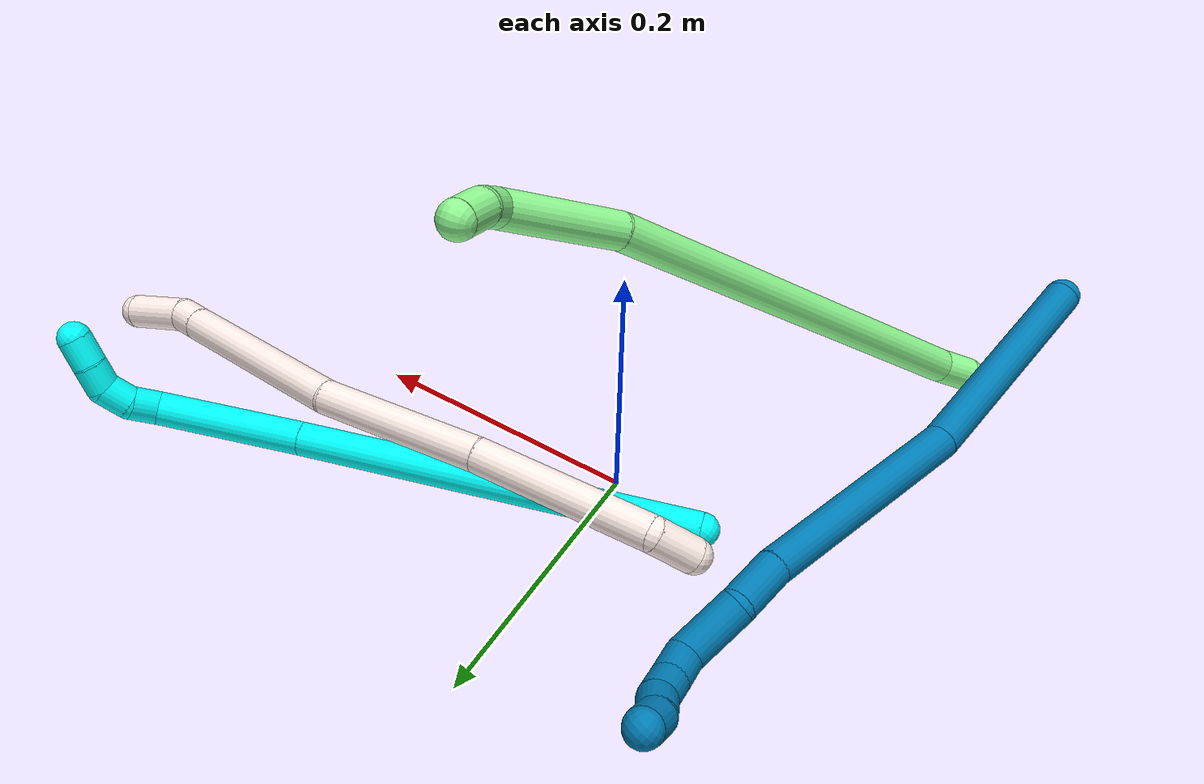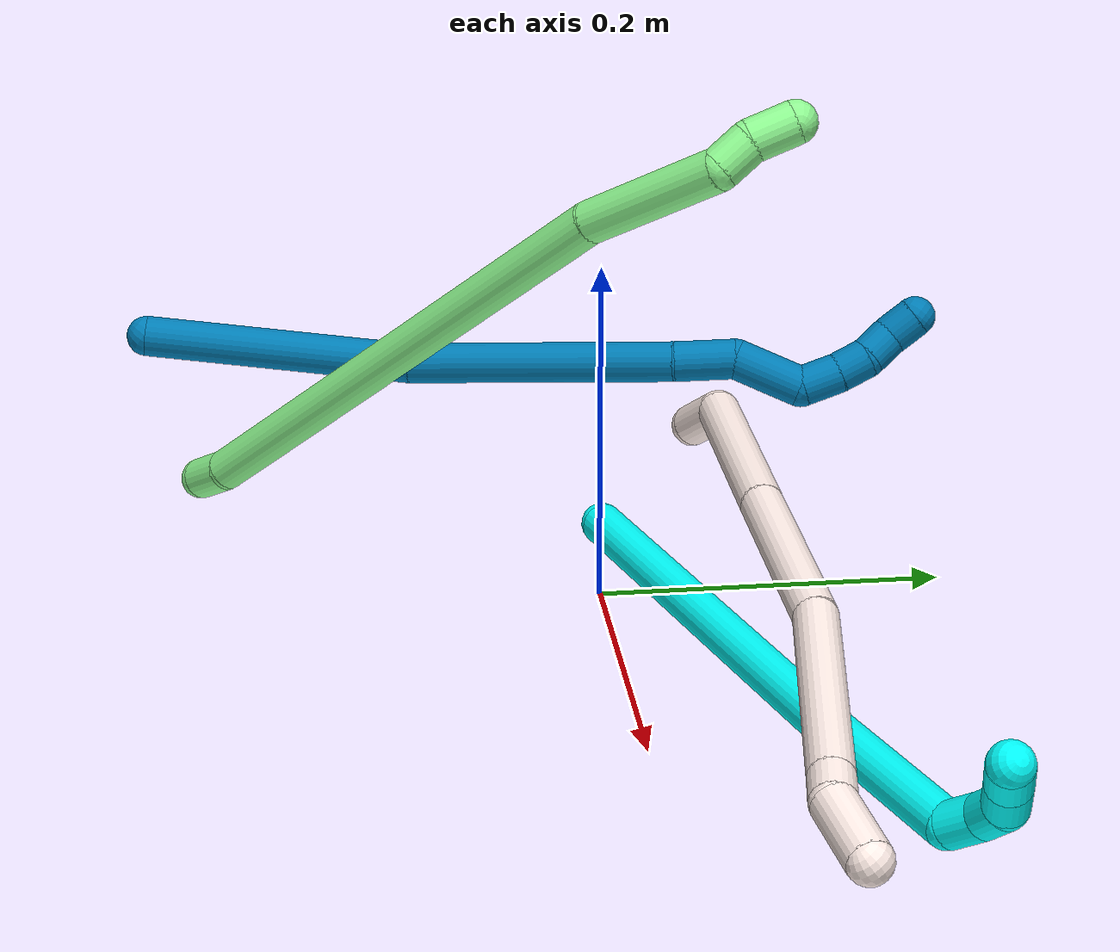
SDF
<sdf version="1.7">
 <world name="default">
  <model name="3">
   <static>0</static>
   <link name="3">
    <collision name="collision-cylinder-e_1_1_4">
     <pose>0.084259 0.041142 0.116987 -0.338171 0.596798 -0.104922</pose>
     <geometry><cylinder><radius>0.0125</radius><length>0.299855</length></cylinder></geometry>
     <surface>
      <friction><ode><mu>1.16</mu><mu2>1.16</mu2><slip1>0</slip1><slip2>0</slip2></ode></friction>
      <contact><ode><kp>1e+06</kp><kd>1</kd><max_vel>0</max_vel><min_depth>0.001</min_depth></ode></contact>
     </surface>
    </collision>
    <visual name="visual-cylinder-e_1_1_4">
     <pose>0.084259 0.041142 0.116987 -0.338171 0.596798 -0.104922</pose>
     <geometry><cylinder><radius>0.0125</radius><length>0.299855</length></cylinder></geometry>
     <material><ambient>0.003922 1 0.996078 1</ambient></material>
    </visual>
    <collision name="collision-cylinder-e_2_4_5">
     <pose>0.19961 0.09894 0.278995 -0.354338 0.574777 -0.105743</pose>
     <geometry><cylinder><radius>0.0125</radius><length>0.114385</length></cylinder></geometry>
     <surface>
      <friction><ode><mu>1.16</mu><mu2>1.16</mu2><slip1>0</slip1><slip2>0</slip2></ode></friction>
      <contact><ode><kp>1e+06</kp><kd>1</kd><max_vel>0</max_vel><min_depth>0.001</min_depth></ode></contact>
     </surface>
    </collision>
    <visual name="visual-cylinder-e_2_4_5">
     <pose>0.19961 0.09894 0.278995 -0.354338 0.574777 -0.105743</pose>
     <geometry><cylinder><radius>0.0125</radius><length>0.114385</length></cylinder></geometry>
     <material><ambient>0.003922 1 0.996078 1</ambient></material>
    </visual>
    <collision name="collision-cylinder-e_3_5_6">
     <pose>0.22911 0.120316 0.334053 -0.439655 -0.142646 0.031924</pose>
     <geometry><cylinder><radius>0.0125</radius><length>0.022413</length></cylinder></geometry>
     <surface>
      <friction><ode><mu>1.16</mu><mu2>1.16</mu2><slip1>0</slip1><slip2>0</slip2></ode></friction>
      <contact><ode><kp>1e+06</kp><kd>1</kd><max_vel>0</max_vel><min_depth>0.001</min_depth></ode></contact>
     </surface>
    </collision>
    <visual name="visual-cylinder-e_3_5_6">
     <pose>0.22911 0.120316 0.334053 -0.439655 -0.142646 0.031924</pose>
     <geometry><cylinder><radius>0.0125</radius><length>0.022413</length></cylinder></geometry>
     <material><ambient>0.003922 1 0.996078 1</ambient></material>
    </visual>
    <collision name="collision-cylinder-e_4_6_7">
     <pose>0.227151 0.125964 0.354748 -0.086736 -0.034174 0.001483</pose>
     <geometry><cylinder><radius>0.0125</radius><length>0.021407</length></cylinder></geometry>
     <surface>
      <friction><ode><mu>1.16</mu><mu2>1.16</mu2><slip1>0</slip1><slip2>0</slip2></ode></friction>
      <contact><ode><kp>1e+06</kp><kd>1</kd><max_vel>0</max_vel><min_depth>0.001</min_depth></ode></contact>
     </surface>
    </collision>
    <visual name="visual-cylinder-e_4_6_7">
     <pose>0.227151 0.125964 0.354748 -0.086736 -0.034174 0.001483</pose>
     <geometry><cylinder><radius>0.0125</radius><length>0.021407</length></cylinder></geometry>
     <material><ambient>0.003922 1 0.996078 1</ambient></material>
    </visual>
    <collision name="collision-cylinder-e_5_7_8">
     <pose>0.224295 0.123073 0.374406 0.401209 -0.249369 -0.05096</pose>
     <geometry><cylinder><radius>0.0125</radius><length>0.020179</length></cylinder></geometry>
     <surface>
      <friction><ode><mu>1.16</mu><mu2>1.16</mu2><slip1>0</slip1><slip2>0</slip2></ode></friction>
      <contact><ode><kp>1e+06</kp><kd>1</kd><max_vel>0</max_vel><min_depth>0.001</min_depth></ode></contact>
     </surface>
    </collision>
    <visual name="visual-cylinder-e_5_7_8">
     <pose>0.224295 0.123073 0.374406 0.401209 -0.249369 -0.05096</pose>
     <geometry><cylinder><radius>0.0125</radius><length>0.020179</length></cylinder></geometry>
     <material><ambient>0.003922 1 0.996078 1</ambient></material>
    </visual>
    <collision name="collision-cylinder-e_6_8_2">
     <pose>0.22043 0.114794 0.393235 0.42601 -0.126748 -0.027449</pose>
     <geometry><cylinder><radius>0.0125</radius><length>0.021762</length></cylinder></geometry>
     <surface>
      <friction><ode><mu>1.16</mu><mu2>1.16</mu2><slip1>0</slip1><slip2>0</slip2></ode></friction>
      <contact><ode><kp>1e+06</kp><kd>1</kd><max_vel>0</max_vel><min_depth>0.001</min_depth></ode></contact>
     </surface>
    </collision>
    <visual name="visual-cylinder-e_6_8_2">
     <pose>0.22043 0.114794 0.393235 0.42601 -0.126748 -0.027449</pose>
     <geometry><cylinder><radius>0.0125</radius><length>0.021762</length></cylinder></geometry>
     <material><ambient>0.003922 1 0.996078 1</ambient></material>
    </visual>
    <collision name="collision-sphere-2">
     <pose>0.219054 0.110334 0.403064 0 -0 0</pose>
     <geometry><sphere><radius>0.0125</radius></sphere></geometry>
     <surface>
      <friction><ode><mu>1.16</mu><mu2>1.16</mu2><slip1>0</slip1><slip2>0</slip2></ode></friction>
      <contact><ode><kp>1e+06</kp><kd>1</kd><max_vel>0</max_vel><min_depth>0.001</min_depth></ode></contact>
     </surface>
    </collision>
    <visual name="visual-sphere-2">
     <pose>0.219054 0.110334 0.403064 0 -0 0</pose>
     <geometry><sphere><radius>0.0125</radius></sphere></geometry>
     <material><ambient>0.003922 1 0.996078 1</ambient></material>
    </visual>
    <collision name="collision-sphere-4">
     <pose>0.168518 0.082284 0.233975 0 -0 0</pose>
     <geometry><sphere><radius>0.0125</radius></sphere></geometry>
     <surface>
      <friction><ode><mu>1.16</mu><mu2>1.16</mu2><slip1>0</slip1><slip2>0</slip2></ode></friction>
      <contact><ode><kp>1e+06</kp><kd>1</kd><max_vel>0</max_vel><min_depth>0.001</min_depth></ode></contact>
     </surface>
    </collision>
    <visual name="visual-sphere-4">
     <pose>0.168518 0.082284 0.233975 0 -0 0</pose>
     <geometry><sphere><radius>0.0125</radius></sphere></geometry>
     <material><ambient>0.003922 1 0.996078 1</ambient></material>
    </visual>
    <collision name="collision-sphere-1">
     <geometry><sphere><radius>0.0125</radius></sphere></geometry>
     <surface>
      <friction><ode><mu>1.16</mu><mu2>1.16</mu2><slip1>0</slip1><slip2>0</slip2></ode></friction>
      <contact><ode><kp>1e+06</kp><kd>1</kd><max_vel>0</max_vel><min_depth>0.001</min_depth></ode></contact>
     </surface>
    </collision>
    <visual name="visual-sphere-1">
     <geometry><sphere><radius>0.0125</radius></sphere></geometry>
     <material><ambient>0.003922 1 0.996078 1</ambient></material>
    </visual>
    <collision name="collision-sphere-8">
     <pose>0.221805 0.119254 0.383406 0 -0 0</pose>
     <geometry><sphere><radius>0.0125</radius></sphere></geometry>
     <surface>
      <friction><ode><mu>1.16</mu><mu2>1.16</mu2><slip1>0</slip1><slip2>0</slip2></ode></friction>
      <contact><ode><kp>1e+06</kp><kd>1</kd><max_vel>0</max_vel><min_depth>0.001</min_depth></ode></contact>
     </surface>
    </collision>
    <visual name="visual-sphere-8">
     <pose>0.221805 0.119254 0.383406 0 -0 0</pose>
     <geometry><sphere><radius>0.0125</radius></sphere></geometry>
     <material><ambient>0.003922 1 0.996078 1</ambient></material>
    </visual>
    <collision name="collision-sphere-5">
     <pose>0.230703 0.115595 0.324016 0 -0 0</pose>
     <geometry><sphere><radius>0.0125</radius></sphere></geometry>
     <surface>
      <friction><ode><mu>1.16</mu><mu2>1.16</mu2><slip1>0</slip1><slip2>0</slip2></ode></friction>
      <contact><ode><kp>1e+06</kp><kd>1</kd><max_vel>0</max_vel><min_depth>0.001</min_depth></ode></contact>
     </surface>
    </collision>
    <visual name="visual-sphere-5">
     <pose>0.230703 0.115595 0.324016 0 -0 0</pose>
     <geometry><sphere><radius>0.0125</radius></sphere></geometry>
     <material><ambient>0.003922 1 0.996078 1</ambient></material>
    </visual>
    <collision name="collision-sphere-6">
     <pose>0.227517 0.125038 0.344091 0 -0 0</pose>
     <geometry><sphere><radius>0.0125</radius></sphere></geometry>
     <surface>
      <friction><ode><mu>1.16</mu><mu2>1.16</mu2><slip1>0</slip1><slip2>0</slip2></ode></friction>
      <contact><ode><kp>1e+06</kp><kd>1</kd><max_vel>0</max_vel><min_depth>0.001</min_depth></ode></contact>
     </surface>
    </collision>
    <visual name="visual-sphere-6">
     <pose>0.227517 0.125038 0.344091 0 -0 0</pose>
     <geometry><sphere><radius>0.0125</radius></sphere></geometry>
     <material><ambient>0.003922 1 0.996078 1</ambient></material>
    </visual>
    <collision name="collision-sphere-7">
     <pose>0.226785 0.126891 0.365405 0 -0 0</pose>
     <geometry><sphere><radius>0.0125</radius></sphere></geometry>
     <surface>
      <friction><ode><mu>1.16</mu><mu2>1.16</mu2><slip1>0</slip1><slip2>0</slip2></ode></friction>
      <contact><ode><kp>1e+06</kp><kd>1</kd><max_vel>0</max_vel><min_depth>0.001</min_depth></ode></contact>
     </surface>
    </collision>
    <visual name="visual-sphere-7">
     <pose>0.226785 0.126891 0.365405 0 -0 0</pose>
     <geometry><sphere><radius>0.0125</radius></sphere></geometry>
     <material><ambient>0.003922 1 0.996078 1</ambient></material>
    </visual>
    <inertial>
     <pose>0.134837 0.068057 0.196371 0 -0 0</pose>
     <mass>0.5</mass>
     <inertia>
      <ixx>0.001782</ixx>
      <ixy>0</ixy>
      <ixz>0</ixz>
      <iyy>0.002094</iyy>
      <iyz>0</iyz>
      <izz>-0.001964</izz>
     </inertia>
    </inertial>
   </link>
   <pose>-0.075753 0.011086 0.011498 -0.503973 0.775333 -0.37473</pose>
  </model>
  <model name="9">
   <static>0</static>
   <link name="9">
    <collision name="collision-cylinder-e_1_1_4">
     <pose>0.025038 0.035478 -0.070404 -2.67482 0.307519 -1.1555</pose>
     <geometry><cylinder><radius>0.0125</radius><length>0.165437</length></cylinder></geometry>
     <surface>
      <friction><ode><mu>1.16</mu><mu2>1.16</mu2><slip1>0</slip1><slip2>0</slip2></ode></friction>
      <contact><ode><kp>1e+06</kp><kd>1</kd><max_vel>0</max_vel><min_depth>0.001</min_depth></ode></contact>
     </surface>
    </collision>
    <visual name="visual-cylinder-e_1_1_4">
     <pose>0.025038 0.035478 -0.070404 -2.67482 0.307519 -1.1555</pose>
     <geometry><cylinder><radius>0.0125</radius><length>0.165437</length></cylinder></geometry>
     <material><ambient>0 0.490196 0.709804 1</ambient></material>
    </visual>
    <collision name="collision-cylinder-e_2_4_5">
     <pose>0.091205 0.103158 -0.20612 -2.68352 0.514131 -1.69062</pose>
     <geometry><cylinder><radius>0.0125</radius><length>0.167261</length></cylinder></geometry>
     <surface>
      <friction><ode><mu>1.16</mu><mu2>1.16</mu2><slip1>0</slip1><slip2>0</slip2></ode></friction>
      <contact><ode><kp>1e+06</kp><kd>1</kd><max_vel>0</max_vel><min_depth>0.001</min_depth></ode></contact>
     </surface>
    </collision>
    <visual name="visual-cylinder-e_2_4_5">
     <pose>0.091205 0.103158 -0.20612 -2.68352 0.514131 -1.69062</pose>
     <geometry><cylinder><radius>0.0125</radius><length>0.167261</length></cylinder></geometry>
     <material><ambient>0 0.490196 0.709804 1</ambient></material>
    </visual>
    <collision name="collision-cylinder-e_3_5_6">
     <pose>0.140129 0.144873 -0.285983 -2.56259 0.421574 -1.24584</pose>
     <geometry><cylinder><radius>0.0125</radius><length>0.038108</length></cylinder></geometry>
     <surface>
      <friction><ode><mu>1.16</mu><mu2>1.16</mu2><slip1>0</slip1><slip2>0</slip2></ode></friction>
      <contact><ode><kp>1e+06</kp><kd>1</kd><max_vel>0</max_vel><min_depth>0.001</min_depth></ode></contact>
     </surface>
    </collision>
    <visual name="visual-cylinder-e_3_5_6">
     <pose>0.140129 0.144873 -0.285983 -2.56259 0.421574 -1.24584</pose>
     <geometry><cylinder><radius>0.0125</radius><length>0.038108</length></cylinder></geometry>
     <material><ambient>0 0.490196 0.709804 1</ambient></material>
    </visual>
    <collision name="collision-cylinder-e_4_6_7">
     <pose>0.152216 0.157862 -0.321668 -2.97857 0.197685 -1.76342</pose>
     <geometry><cylinder><radius>0.0125</radius><length>0.043684</length></cylinder></geometry>
     <surface>
      <friction><ode><mu>1.16</mu><mu2>1.16</mu2><slip1>0</slip1><slip2>0</slip2></ode></friction>
      <contact><ode><kp>1e+06</kp><kd>1</kd><max_vel>0</max_vel><min_depth>0.001</min_depth></ode></contact>
     </surface>
    </collision>
    <visual name="visual-cylinder-e_4_6_7">
     <pose>0.152216 0.157862 -0.321668 -2.97857 0.197685 -1.76342</pose>
     <geometry><cylinder><radius>0.0125</radius><length>0.043684</length></cylinder></geometry>
     <material><ambient>0 0.490196 0.709804 1</ambient></material>
    </visual>
    <collision name="collision-cylinder-e_5_7_8">
     <pose>0.161764 0.170427 -0.349359 -2.19587 0.438723 -0.821985</pose>
     <geometry><cylinder><radius>0.0125</radius><length>0.024761</length></cylinder></geometry>
     <surface>
      <friction><ode><mu>1.16</mu><mu2>1.16</mu2><slip1>0</slip1><slip2>0</slip2></ode></friction>
      <contact><ode><kp>1e+06</kp><kd>1</kd><max_vel>0</max_vel><min_depth>0.001</min_depth></ode></contact>
     </surface>
    </collision>
    <visual name="visual-cylinder-e_5_7_8">
     <pose>0.161764 0.170427 -0.349359 -2.19587 0.438723 -0.821985</pose>
     <geometry><cylinder><radius>0.0125</radius><length>0.024761</length></cylinder></geometry>
     <material><ambient>0 0.490196 0.709804 1</ambient></material>
    </visual>
    <collision name="collision-cylinder-e_6_8_9">
     <pose>0.172104 0.187172 -0.360114 -2.0722 0.527007 -0.854866</pose>
     <geometry><cylinder><radius>0.0125</radius><length>0.020204</length></cylinder></geometry>
     <surface>
      <friction><ode><mu>1.16</mu><mu2>1.16</mu2><slip1>0</slip1><slip2>0</slip2></ode></friction>
      <contact><ode><kp>1e+06</kp><kd>1</kd><max_vel>0</max_vel><min_depth>0.001</min_depth></ode></contact>
     </surface>
    </collision>
    <visual name="visual-cylinder-e_6_8_9">
     <pose>0.172104 0.187172 -0.360114 -2.0722 0.527007 -0.854866</pose>
     <geometry><cylinder><radius>0.0125</radius><length>0.020204</length></cylinder></geometry>
     <material><ambient>0 0.490196 0.709804 1</ambient></material>
    </visual>
    <collision name="collision-cylinder-e_7_9_10">
     <pose>0.181008 0.204166 -0.365915 -1.74091 0.383521 -0.452778</pose>
     <geometry><cylinder><radius>0.0125</radius><length>0.020433</length></cylinder></geometry>
     <surface>
      <friction><ode><mu>1.16</mu><mu2>1.16</mu2><slip1>0</slip1><slip2>0</slip2></ode></friction>
      <contact><ode><kp>1e+06</kp><kd>1</kd><max_vel>0</max_vel><min_depth>0.001</min_depth></ode></contact>
     </surface>
    </collision>
    <visual name="visual-cylinder-e_7_9_10">
     <pose>0.181008 0.204166 -0.365915 -1.74091 0.383521 -0.452778</pose>
     <geometry><cylinder><radius>0.0125</radius><length>0.020433</length></cylinder></geometry>
     <material><ambient>0 0.490196 0.709804 1</ambient></material>
    </visual>
    <collision name="collision-cylinder-e_8_10_2">
     <pose>0.191387 0.220682 -0.370089 -1.91463 0.710195 -0.969466</pose>
     <geometry><cylinder><radius>0.0125</radius><length>0.020113</length></cylinder></geometry>
     <surface>
      <friction><ode><mu>1.16</mu><mu2>1.16</mu2><slip1>0</slip1><slip2>0</slip2></ode></friction>
      <contact><ode><kp>1e+06</kp><kd>1</kd><max_vel>0</max_vel><min_depth>0.001</min_depth></ode></contact>
     </surface>
    </collision>
    <visual name="visual-cylinder-e_8_10_2">
     <pose>0.191387 0.220682 -0.370089 -1.91463 0.710195 -0.969466</pose>
     <geometry><cylinder><radius>0.0125</radius><length>0.020113</length></cylinder></geometry>
     <material><ambient>0 0.490196 0.709804 1</ambient></material>
    </visual>
    <collision name="collision-sphere-2">
     <pose>0.197944 0.227861 -0.37266 0 -0 0</pose>
     <geometry><sphere><radius>0.0125</radius></sphere></geometry>
     <surface>
      <friction><ode><mu>1.16</mu><mu2>1.16</mu2><slip1>0</slip1><slip2>0</slip2></ode></friction>
      <contact><ode><kp>1e+06</kp><kd>1</kd><max_vel>0</max_vel><min_depth>0.001</min_depth></ode></contact>
     </surface>
    </collision>
    <visual name="visual-sphere-2">
     <pose>0.197944 0.227861 -0.37266 0 -0 0</pose>
     <geometry><sphere><radius>0.0125</radius></sphere></geometry>
     <material><ambient>0 0.490196 0.709804 1</ambient></material>
    </visual>
    <collision name="collision-sphere-10">
     <pose>0.184831 0.213504 -0.367519 0 -0 0</pose>
     <geometry><sphere><radius>0.0125</radius></sphere></geometry>
     <surface>
      <friction><ode><mu>1.16</mu><mu2>1.16</mu2><slip1>0</slip1><slip2>0</slip2></ode></friction>
      <contact><ode><kp>1e+06</kp><kd>1</kd><max_vel>0</max_vel><min_depth>0.001</min_depth></ode></contact>
     </surface>
    </collision>
    <visual name="visual-sphere-10">
     <pose>0.184831 0.213504 -0.367519 0 -0 0</pose>
     <geometry><sphere><radius>0.0125</radius></sphere></geometry>
     <material><ambient>0 0.490196 0.709804 1</ambient></material>
    </visual>
    <collision name="collision-sphere-9">
     <pose>0.177185 0.194829 -0.364311 0 -0 0</pose>
     <geometry><sphere><radius>0.0125</radius></sphere></geometry>
     <surface>
      <friction><ode><mu>1.16</mu><mu2>1.16</mu2><slip1>0</slip1><slip2>0</slip2></ode></friction>
      <contact><ode><kp>1e+06</kp><kd>1</kd><max_vel>0</max_vel><min_depth>0.001</min_depth></ode></contact>
     </surface>
    </collision>
    <visual name="visual-sphere-9">
     <pose>0.177185 0.194829 -0.364311 0 -0 0</pose>
     <geometry><sphere><radius>0.0125</radius></sphere></geometry>
     <material><ambient>0 0.490196 0.709804 1</ambient></material>
    </visual>
    <collision name="collision-sphere-4">
     <pose>0.050077 0.070956 -0.140808 0 -0 0</pose>
     <geometry><sphere><radius>0.0125</radius></sphere></geometry>
     <surface>
      <friction><ode><mu>1.16</mu><mu2>1.16</mu2><slip1>0</slip1><slip2>0</slip2></ode></friction>
      <contact><ode><kp>1e+06</kp><kd>1</kd><max_vel>0</max_vel><min_depth>0.001</min_depth></ode></contact>
     </surface>
    </collision>
    <visual name="visual-sphere-4">
     <pose>0.050077 0.070956 -0.140808 0 -0 0</pose>
     <geometry><sphere><radius>0.0125</radius></sphere></geometry>
     <material><ambient>0 0.490196 0.709804 1</ambient></material>
    </visual>
    <collision name="collision-sphere-1">
     <geometry><sphere><radius>0.0125</radius></sphere></geometry>
     <surface>
      <friction><ode><mu>1.16</mu><mu2>1.16</mu2><slip1>0</slip1><slip2>0</slip2></ode></friction>
      <contact><ode><kp>1e+06</kp><kd>1</kd><max_vel>0</max_vel><min_depth>0.001</min_depth></ode></contact>
     </surface>
    </collision>
    <visual name="visual-sphere-1">
     <geometry><sphere><radius>0.0125</radius></sphere></geometry>
     <material><ambient>0 0.490196 0.709804 1</ambient></material>
    </visual>
    <collision name="collision-sphere-8">
     <pose>0.167024 0.179516 -0.355918 0 -0 0</pose>
     <geometry><sphere><radius>0.0125</radius></sphere></geometry>
     <surface>
      <friction><ode><mu>1.16</mu><mu2>1.16</mu2><slip1>0</slip1><slip2>0</slip2></ode></friction>
      <contact><ode><kp>1e+06</kp><kd>1</kd><max_vel>0</max_vel><min_depth>0.001</min_depth></ode></contact>
     </surface>
    </collision>
    <visual name="visual-sphere-8">
     <pose>0.167024 0.179516 -0.355918 0 -0 0</pose>
     <geometry><sphere><radius>0.0125</radius></sphere></geometry>
     <material><ambient>0 0.490196 0.709804 1</ambient></material>
    </visual>
    <collision name="collision-sphere-5">
     <pose>0.132332 0.13536 -0.271431 0 -0 0</pose>
     <geometry><sphere><radius>0.0125</radius></sphere></geometry>
     <surface>
      <friction><ode><mu>1.16</mu><mu2>1.16</mu2><slip1>0</slip1><slip2>0</slip2></ode></friction>
      <contact><ode><kp>1e+06</kp><kd>1</kd><max_vel>0</max_vel><min_depth>0.001</min_depth></ode></contact>
     </surface>
    </collision>
    <visual name="visual-sphere-5">
     <pose>0.132332 0.13536 -0.271431 0 -0 0</pose>
     <geometry><sphere><radius>0.0125</radius></sphere></geometry>
     <material><ambient>0 0.490196 0.709804 1</ambient></material>
    </visual>
    <collision name="collision-sphere-6">
     <pose>0.147926 0.154386 -0.300535 0 -0 0</pose>
     <geometry><sphere><radius>0.0125</radius></sphere></geometry>
     <surface>
      <friction><ode><mu>1.16</mu><mu2>1.16</mu2><slip1>0</slip1><slip2>0</slip2></ode></friction>
      <contact><ode><kp>1e+06</kp><kd>1</kd><max_vel>0</max_vel><min_depth>0.001</min_depth></ode></contact>
     </surface>
    </collision>
    <visual name="visual-sphere-6">
     <pose>0.147926 0.154386 -0.300535 0 -0 0</pose>
     <geometry><sphere><radius>0.0125</radius></sphere></geometry>
     <material><ambient>0 0.490196 0.709804 1</ambient></material>
    </visual>
    <collision name="collision-sphere-7">
     <pose>0.156505 0.161338 -0.342801 0 -0 0</pose>
     <geometry><sphere><radius>0.0125</radius></sphere></geometry>
     <surface>
      <friction><ode><mu>1.16</mu><mu2>1.16</mu2><slip1>0</slip1><slip2>0</slip2></ode></friction>
      <contact><ode><kp>1e+06</kp><kd>1</kd><max_vel>0</max_vel><min_depth>0.001</min_depth></ode></contact>
     </surface>
    </collision>
    <visual name="visual-sphere-7">
     <pose>0.156505 0.161338 -0.342801 0 -0 0</pose>
     <geometry><sphere><radius>0.0125</radius></sphere></geometry>
     <material><ambient>0 0.490196 0.709804 1</ambient></material>
    </visual>
    <inertial>
     <pose>0.092834 0.104304 -0.203839 0 -0 0</pose>
     <mass>0.5</mass>
     <inertia>
      <ixx>-0.000569</ixx>
      <ixy>0</ixy>
      <ixz>0</ixz>
      <iyy>-0.000638</iyy>
      <iyz>0</iyz>
      <izz>-0.000675</izz>
     </inertia>
    </inertial>
   </link>
   <pose>-0.218031 -0.258872 0.091615 0.577709 -0.831826 0.450754</pose>
  </model>
  <model name="11">
   <static>0</static>
   <link name="11">
    <collision name="collision-cylinder-e_1_1_4">
     <pose>0.00437 0.015336 0.003616 -1.33923 0.270522 -0.214642</pose>
     <geometry><cylinder><radius>0.0125</radius><length>0.032702</length></cylinder></geometry>
     <surface>
      <friction><ode><mu>1.16</mu><mu2>1.16</mu2><slip1>0</slip1><slip2>0</slip2></ode></friction>
      <contact><ode><kp>1e+06</kp><kd>1</kd><max_vel>0</max_vel><min_depth>0.001</min_depth></ode></contact>
     </surface>
    </collision>
    <visual name="visual-cylinder-e_1_1_4">
     <pose>0.00437 0.015336 0.003616 -1.33923 0.270522 -0.214642</pose>
     <geometry><cylinder><radius>0.0125</radius><length>0.032702</length></cylinder></geometry>
     <material><ambient>1 0.933333 0.909804 1</ambient></material>
    </visual>
    <collision name="collision-cylinder-e_2_4_5">
     <pose>0.06302 0.068522 0.001428 -1.72296 0.956415 -1.08653</pose>
     <geometry><cylinder><radius>0.0125</radius><length>0.132856</length></cylinder></geometry>
     <surface>
      <friction><ode><mu>1.16</mu><mu2>1.16</mu2><slip1>0</slip1><slip2>0</slip2></ode></friction>
      <contact><ode><kp>1e+06</kp><kd>1</kd><max_vel>0</max_vel><min_depth>0.001</min_depth></ode></contact>
     </surface>
    </collision>
    <visual name="visual-cylinder-e_2_4_5">
     <pose>0.06302 0.068522 0.001428 -1.72296 0.956415 -1.08653</pose>
     <geometry><cylinder><radius>0.0125</radius><length>0.132856</length></cylinder></geometry>
     <material><ambient>1 0.933333 0.909804 1</ambient></material>
    </visual>
    <collision name="collision-cylinder-e_3_5_6">
     <pose>0.168906 0.141934 -0.013546 -1.82316 0.952299 -1.1745</pose>
     <geometry><cylinder><radius>0.0125</radius><length>0.12668</length></cylinder></geometry>
     <surface>
      <friction><ode><mu>1.16</mu><mu2>1.16</mu2><slip1>0</slip1><slip2>0</slip2></ode></friction>
      <contact><ode><kp>1e+06</kp><kd>1</kd><max_vel>0</max_vel><min_depth>0.001</min_depth></ode></contact>
     </surface>
    </collision>
    <visual name="visual-cylinder-e_3_5_6">
     <pose>0.168906 0.141934 -0.013546 -1.82316 0.952299 -1.1745</pose>
     <geometry><cylinder><radius>0.0125</radius><length>0.12668</length></cylinder></geometry>
     <material><ambient>1 0.933333 0.909804 1</ambient></material>
    </visual>
    <collision name="collision-cylinder-e_4_6_7">
     <pose>0.285999 0.207146 -0.028462 -1.76222 1.13868 -1.31985</pose>
     <geometry><cylinder><radius>0.0125</radius><length>0.14423</length></cylinder></geometry>
     <surface>
      <friction><ode><mu>1.16</mu><mu2>1.16</mu2><slip1>0</slip1><slip2>0</slip2></ode></friction>
      <contact><ode><kp>1e+06</kp><kd>1</kd><max_vel>0</max_vel><min_depth>0.001</min_depth></ode></contact>
     </surface>
    </collision>
    <visual name="visual-cylinder-e_4_6_7">
     <pose>0.285999 0.207146 -0.028462 -1.76222 1.13868 -1.31985</pose>
     <geometry><cylinder><radius>0.0125</radius><length>0.14423</length></cylinder></geometry>
     <material><ambient>1 0.933333 0.909804 1</ambient></material>
    </visual>
    <collision name="collision-cylinder-e_5_7_8">
     <pose>0.360765 0.240855 -0.034954 -1.75247 1.15231 -1.32474</pose>
     <geometry><cylinder><radius>0.0125</radius><length>0.020313</length></cylinder></geometry>
     <surface>
      <friction><ode><mu>1.16</mu><mu2>1.16</mu2><slip1>0</slip1><slip2>0</slip2></ode></friction>
      <contact><ode><kp>1e+06</kp><kd>1</kd><max_vel>0</max_vel><min_depth>0.001</min_depth></ode></contact>
     </surface>
    </collision>
    <visual name="visual-cylinder-e_5_7_8">
     <pose>0.360765 0.240855 -0.034954 -1.75247 1.15231 -1.32474</pose>
     <geometry><cylinder><radius>0.0125</radius><length>0.020313</length></cylinder></geometry>
     <material><ambient>1 0.933333 0.909804 1</ambient></material>
    </visual>
    <collision name="collision-cylinder-e_6_8_2">
     <pose>0.385885 0.257438 -0.043394 -2.12176 0.82272 -1.32493</pose>
     <geometry><cylinder><radius>0.0125</radius><length>0.043218</length></cylinder></geometry>
     <surface>
      <friction><ode><mu>1.16</mu><mu2>1.16</mu2><slip1>0</slip1><slip2>0</slip2></ode></friction>
      <contact><ode><kp>1e+06</kp><kd>1</kd><max_vel>0</max_vel><min_depth>0.001</min_depth></ode></contact>
     </surface>
    </collision>
    <visual name="visual-cylinder-e_6_8_2">
     <pose>0.385885 0.257438 -0.043394 -2.12176 0.82272 -1.32493</pose>
     <geometry><cylinder><radius>0.0125</radius><length>0.043218</length></cylinder></geometry>
     <material><ambient>1 0.933333 0.909804 1</ambient></material>
    </visual>
    <collision name="collision-sphere-2">
     <pose>0.401725 0.269962 -0.05109 0 -0 0</pose>
     <geometry><sphere><radius>0.0125</radius></sphere></geometry>
     <surface>
      <friction><ode><mu>1.16</mu><mu2>1.16</mu2><slip1>0</slip1><slip2>0</slip2></ode></friction>
      <contact><ode><kp>1e+06</kp><kd>1</kd><max_vel>0</max_vel><min_depth>0.001</min_depth></ode></contact>
     </surface>
    </collision>
    <visual name="visual-sphere-2">
     <pose>0.401725 0.269962 -0.05109 0 -0 0</pose>
     <geometry><sphere><radius>0.0125</radius></sphere></geometry>
     <material><ambient>1 0.933333 0.909804 1</ambient></material>
    </visual>
    <collision name="collision-sphere-4">
     <pose>0.008739 0.030672 0.007232 0 -0 0</pose>
     <geometry><sphere><radius>0.0125</radius></sphere></geometry>
     <surface>
      <friction><ode><mu>1.16</mu><mu2>1.16</mu2><slip1>0</slip1><slip2>0</slip2></ode></friction>
      <contact><ode><kp>1e+06</kp><kd>1</kd><max_vel>0</max_vel><min_depth>0.001</min_depth></ode></contact>
     </surface>
    </collision>
    <visual name="visual-sphere-4">
     <pose>0.008739 0.030672 0.007232 0 -0 0</pose>
     <geometry><sphere><radius>0.0125</radius></sphere></geometry>
     <material><ambient>1 0.933333 0.909804 1</ambient></material>
    </visual>
    <collision name="collision-sphere-1">
     <geometry><sphere><radius>0.0125</radius></sphere></geometry>
     <surface>
      <friction><ode><mu>1.16</mu><mu2>1.16</mu2><slip1>0</slip1><slip2>0</slip2></ode></friction>
      <contact><ode><kp>1e+06</kp><kd>1</kd><max_vel>0</max_vel><min_depth>0.001</min_depth></ode></contact>
     </surface>
    </collision>
    <visual name="visual-sphere-1">
     <geometry><sphere><radius>0.0125</radius></sphere></geometry>
     <material><ambient>1 0.933333 0.909804 1</ambient></material>
    </visual>
    <collision name="collision-sphere-8">
     <pose>0.370046 0.244914 -0.035699 0 -0 0</pose>
     <geometry><sphere><radius>0.0125</radius></sphere></geometry>
     <surface>
      <friction><ode><mu>1.16</mu><mu2>1.16</mu2><slip1>0</slip1><slip2>0</slip2></ode></friction>
      <contact><ode><kp>1e+06</kp><kd>1</kd><max_vel>0</max_vel><min_depth>0.001</min_depth></ode></contact>
     </surface>
    </collision>
    <visual name="visual-sphere-8">
     <pose>0.370046 0.244914 -0.035699 0 -0 0</pose>
     <geometry><sphere><radius>0.0125</radius></sphere></geometry>
     <material><ambient>1 0.933333 0.909804 1</ambient></material>
    </visual>
    <collision name="collision-sphere-5">
     <pose>0.1173 0.106373 -0.004376 0 -0 0</pose>
     <geometry><sphere><radius>0.0125</radius></sphere></geometry>
     <surface>
      <friction><ode><mu>1.16</mu><mu2>1.16</mu2><slip1>0</slip1><slip2>0</slip2></ode></friction>
      <contact><ode><kp>1e+06</kp><kd>1</kd><max_vel>0</max_vel><min_depth>0.001</min_depth></ode></contact>
     </surface>
    </collision>
    <visual name="visual-sphere-5">
     <pose>0.1173 0.106373 -0.004376 0 -0 0</pose>
     <geometry><sphere><radius>0.0125</radius></sphere></geometry>
     <material><ambient>1 0.933333 0.909804 1</ambient></material>
    </visual>
    <collision name="collision-sphere-6">
     <pose>0.220513 0.177496 -0.022716 0 -0 0</pose>
     <geometry><sphere><radius>0.0125</radius></sphere></geometry>
     <surface>
      <friction><ode><mu>1.16</mu><mu2>1.16</mu2><slip1>0</slip1><slip2>0</slip2></ode></friction>
      <contact><ode><kp>1e+06</kp><kd>1</kd><max_vel>0</max_vel><min_depth>0.001</min_depth></ode></contact>
     </surface>
    </collision>
    <visual name="visual-sphere-6">
     <pose>0.220513 0.177496 -0.022716 0 -0 0</pose>
     <geometry><sphere><radius>0.0125</radius></sphere></geometry>
     <material><ambient>1 0.933333 0.909804 1</ambient></material>
    </visual>
    <collision name="collision-sphere-7">
     <pose>0.351485 0.236795 -0.034208 0 -0 0</pose>
     <geometry><sphere><radius>0.0125</radius></sphere></geometry>
     <surface>
      <friction><ode><mu>1.16</mu><mu2>1.16</mu2><slip1>0</slip1><slip2>0</slip2></ode></friction>
      <contact><ode><kp>1e+06</kp><kd>1</kd><max_vel>0</max_vel><min_depth>0.001</min_depth></ode></contact>
     </surface>
    </collision>
    <visual name="visual-sphere-7">
     <pose>0.351485 0.236795 -0.034208 0 -0 0</pose>
     <geometry><sphere><radius>0.0125</radius></sphere></geometry>
     <material><ambient>1 0.933333 0.909804 1</ambient></material>
    </visual>
    <inertial>
     <pose>0.190335 0.146961 -0.016197 0 -0 0</pose>
     <mass>0.5</mass>
     <inertia>
      <ixx>-0.00015</ixx>
      <ixy>0</ixy>
      <ixz>0</ixz>
      <iyy>0.000169</iyy>
      <iyz>0</iyz>
      <izz>-0.000878</izz>
     </inertia>
    </inertial>
   </link>
   <pose>-0.09765 0.068611 0.064213 0.530969 0.299601 -0.541821</pose>
  </model>
  <model name="13">
   <static>0</static>
   <link name="13">
    <collision name="collision-cylinder-e_1_1_4">
     <pose>0.005152 0.008733 0.009033 -0.768527 0.389166 -0.159045</pose>
     <geometry><cylinder><radius>0.0125</radius><length>0.02716</length></cylinder></geometry>
     <surface>
      <friction><ode><mu>1.16</mu><mu2>1.16</mu2><slip1>0</slip1><slip2>0</slip2></ode></friction>
      <contact><ode><kp>1e+06</kp><kd>1</kd><max_vel>0</max_vel><min_depth>0.001</min_depth></ode></contact>
     </surface>
    </collision>
    <visual name="visual-cylinder-e_1_1_4">
     <pose>0.005152 0.008733 0.009033 -0.768527 0.389166 -0.159045</pose>
     <geometry><cylinder><radius>0.0125</radius><length>0.02716</length></cylinder></geometry>
     <material><ambient>0.564706 0.984314 0.572549 1</ambient></material>
    </visual>
    <collision name="collision-cylinder-e_2_4_5">
     <pose>0.074907 0.150572 0.095601 -1.04334 0.397102 -0.230271</pose>
     <geometry><cylinder><radius>0.0125</radius><length>0.334079</length></cylinder></geometry>
     <surface>
      <friction><ode><mu>1.16</mu><mu2>1.16</mu2><slip1>0</slip1><slip2>0</slip2></ode></friction>
      <contact><ode><kp>1e+06</kp><kd>1</kd><max_vel>0</max_vel><min_depth>0.001</min_depth></ode></contact>
     </surface>
    </collision>
    <visual name="visual-cylinder-e_2_4_5">
     <pose>0.074907 0.150572 0.095601 -1.04334 0.397102 -0.230271</pose>
     <geometry><cylinder><radius>0.0125</radius><length>0.334079</length></cylinder></geometry>
     <material><ambient>0.564706 0.984314 0.572549 1</ambient></material>
    </visual>
    <collision name="collision-cylinder-e_3_5_6">
     <pose>0.163217 0.314891 0.195309 -0.953134 0.554428 -0.291704</pose>
     <geometry><cylinder><radius>0.0125</radius><length>0.090065</length></cylinder></geometry>
     <surface>
      <friction><ode><mu>1.16</mu><mu2>1.16</mu2><slip1>0</slip1><slip2>0</slip2></ode></friction>
      <contact><ode><kp>1e+06</kp><kd>1</kd><max_vel>0</max_vel><min_depth>0.001</min_depth></ode></contact>
     </surface>
    </collision>
    <visual name="visual-cylinder-e_3_5_6">
     <pose>0.163217 0.314891 0.195309 -0.953134 0.554428 -0.291704</pose>
     <geometry><cylinder><radius>0.0125</radius><length>0.090065</length></cylinder></geometry>
     <material><ambient>0.564706 0.984314 0.572549 1</ambient></material>
    </visual>
    <collision name="collision-cylinder-e_4_6_7">
     <pose>0.19289 0.35521 0.215498 -1.7853 0.569357 -0.696842</pose>
     <geometry><cylinder><radius>0.0125</radius><length>0.022131</length></cylinder></geometry>
     <surface>
      <friction><ode><mu>1.16</mu><mu2>1.16</mu2><slip1>0</slip1><slip2>0</slip2></ode></friction>
      <contact><ode><kp>1e+06</kp><kd>1</kd><max_vel>0</max_vel><min_depth>0.001</min_depth></ode></contact>
     </surface>
    </collision>
    <visual name="visual-cylinder-e_4_6_7">
     <pose>0.19289 0.35521 0.215498 -1.7853 0.569357 -0.696842</pose>
     <geometry><cylinder><radius>0.0125</radius><length>0.022131</length></cylinder></geometry>
     <material><ambient>0.564706 0.984314 0.572549 1</ambient></material>
    </visual>
    <collision name="collision-cylinder-e_5_7_2">
     <pose>0.209216 0.37256 0.212454 -1.69867 0.894686 -0.99864</pose>
     <geometry><cylinder><radius>0.0125</radius><length>0.026564</length></cylinder></geometry>
     <surface>
      <friction><ode><mu>1.16</mu><mu2>1.16</mu2><slip1>0</slip1><slip2>0</slip2></ode></friction>
      <contact><ode><kp>1e+06</kp><kd>1</kd><max_vel>0</max_vel><min_depth>0.001</min_depth></ode></contact>
     </surface>
    </collision>
    <visual name="visual-cylinder-e_5_7_2">
     <pose>0.209216 0.37256 0.212454 -1.69867 0.894686 -0.99864</pose>
     <geometry><cylinder><radius>0.0125</radius><length>0.026564</length></cylinder></geometry>
     <material><ambient>0.564706 0.984314 0.572549 1</ambient></material>
    </visual>
    <collision name="collision-sphere-2">
     <pose>0.219576 0.380804 0.211394 0 -0 0</pose>
     <geometry><sphere><radius>0.0125</radius></sphere></geometry>
     <surface>
      <friction><ode><mu>1.16</mu><mu2>1.16</mu2><slip1>0</slip1><slip2>0</slip2></ode></friction>
      <contact><ode><kp>1e+06</kp><kd>1</kd><max_vel>0</max_vel><min_depth>0.001</min_depth></ode></contact>
     </surface>
    </collision>
    <visual name="visual-sphere-2">
     <pose>0.219576 0.380804 0.211394 0 -0 0</pose>
     <geometry><sphere><radius>0.0125</radius></sphere></geometry>
     <material><ambient>0.564706 0.984314 0.572549 1</ambient></material>
    </visual>
    <collision name="collision-sphere-7">
     <pose>0.198855 0.364317 0.213514 0 -0 0</pose>
     <geometry><sphere><radius>0.0125</radius></sphere></geometry>
     <surface>
      <friction><ode><mu>1.16</mu><mu2>1.16</mu2><slip1>0</slip1><slip2>0</slip2></ode></friction>
      <contact><ode><kp>1e+06</kp><kd>1</kd><max_vel>0</max_vel><min_depth>0.001</min_depth></ode></contact>
     </surface>
    </collision>
    <visual name="visual-sphere-7">
     <pose>0.198855 0.364317 0.213514 0 -0 0</pose>
     <geometry><sphere><radius>0.0125</radius></sphere></geometry>
     <material><ambient>0.564706 0.984314 0.572549 1</ambient></material>
    </visual>
    <collision name="collision-sphere-6">
     <pose>0.186925 0.346104 0.217482 0 -0 0</pose>
     <geometry><sphere><radius>0.0125</radius></sphere></geometry>
     <surface>
      <friction><ode><mu>1.16</mu><mu2>1.16</mu2><slip1>0</slip1><slip2>0</slip2></ode></friction>
      <contact><ode><kp>1e+06</kp><kd>1</kd><max_vel>0</max_vel><min_depth>0.001</min_depth></ode></contact>
     </surface>
    </collision>
    <visual name="visual-sphere-6">
     <pose>0.186925 0.346104 0.217482 0 -0 0</pose>
     <geometry><sphere><radius>0.0125</radius></sphere></geometry>
     <material><ambient>0.564706 0.984314 0.572549 1</ambient></material>
    </visual>
    <collision name="collision-sphere-5">
     <pose>0.139509 0.283678 0.173136 0 -0 0</pose>
     <geometry><sphere><radius>0.0125</radius></sphere></geometry>
     <surface>
      <friction><ode><mu>1.16</mu><mu2>1.16</mu2><slip1>0</slip1><slip2>0</slip2></ode></friction>
      <contact><ode><kp>1e+06</kp><kd>1</kd><max_vel>0</max_vel><min_depth>0.001</min_depth></ode></contact>
     </surface>
    </collision>
    <visual name="visual-sphere-5">
     <pose>0.139509 0.283678 0.173136 0 -0 0</pose>
     <geometry><sphere><radius>0.0125</radius></sphere></geometry>
     <material><ambient>0.564706 0.984314 0.572549 1</ambient></material>
    </visual>
    <collision name="collision-sphere-1">
     <geometry><sphere><radius>0.0125</radius></sphere></geometry>
     <surface>
      <friction><ode><mu>1.16</mu><mu2>1.16</mu2><slip1>0</slip1><slip2>0</slip2></ode></friction>
      <contact><ode><kp>1e+06</kp><kd>1</kd><max_vel>0</max_vel><min_depth>0.001</min_depth></ode></contact>
     </surface>
    </collision>
    <visual name="visual-sphere-1">
     <geometry><sphere><radius>0.0125</radius></sphere></geometry>
     <material><ambient>0.564706 0.984314 0.572549 1</ambient></material>
    </visual>
    <collision name="collision-sphere-4">
     <pose>0.010305 0.017467 0.018066 0 -0 0</pose>
     <geometry><sphere><radius>0.0125</radius></sphere></geometry>
     <surface>
      <friction><ode><mu>1.16</mu><mu2>1.16</mu2><slip1>0</slip1><slip2>0</slip2></ode></friction>
      <contact><ode><kp>1e+06</kp><kd>1</kd><max_vel>0</max_vel><min_depth>0.001</min_depth></ode></contact>
     </surface>
    </collision>
    <visual name="visual-sphere-4">
     <pose>0.010305 0.017467 0.018066 0 -0 0</pose>
     <geometry><sphere><radius>0.0125</radius></sphere></geometry>
     <material><ambient>0.564706 0.984314 0.572549 1</ambient></material>
    </visual>
    <inertial>
     <pose>0.099383 0.193318 0.120374 0 -0 0</pose>
     <mass>0.5</mass>
     <inertia>
      <ixx>0.0022</ixx>
      <ixy>0</ixy>
      <ixz>0</ixz>
      <iyy>0.001169</iyy>
      <iyz>0</iyz>
      <izz>-0.003764</izz>
     </inertia>
    </inertial>
   </link>
   <pose>-0.174216 -0.22852 0.011642 1.62162 0.311407 1.58884</pose>
  </model>
 </world>
</sdf>
